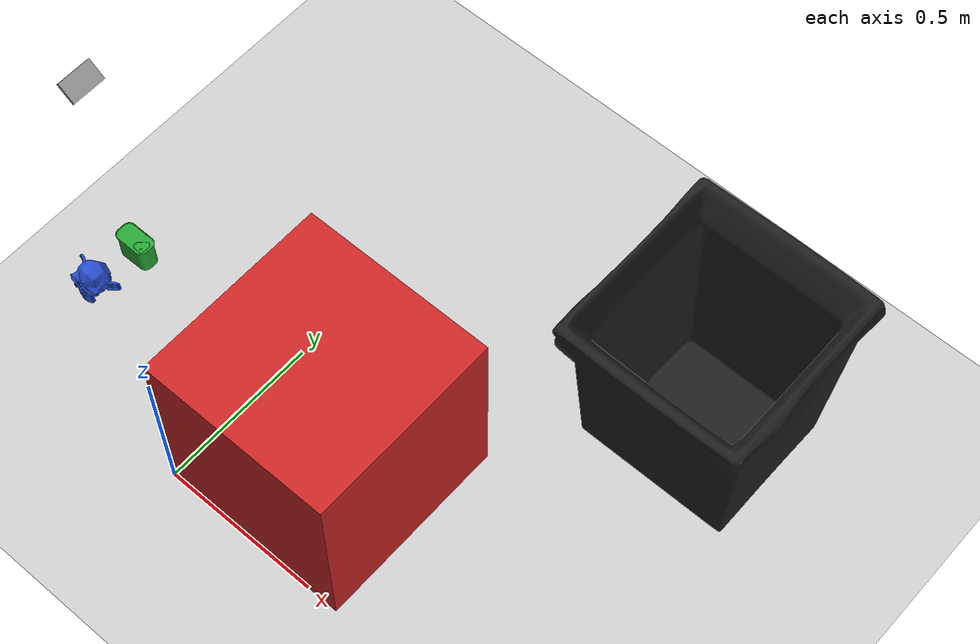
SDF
<?xml version="1.0" ?>
<sdf version="1.4">
  <world name="default">
    <include>
      <uri>model://ground_plane</uri>
    </include>

    <include>
      <uri>model://demo_table</uri>
      <name>demo_table1</name>
      <pose>0.3 0.3 0.3 0 0 0</pose>
    </include>

    <include>
      <uri>model://rubbish_bin</uri>
      <name>rubbish_bin1</name>
      <pose>1.0 1.0 0.1 0 0 0</pose>
    </include>

    <include>
      <uri>model://demo_spam</uri>
      <name>demo_spam1</name>
      <pose>-0.2 0.2 0.7 0 0 0</pose>
    </include>

    <include>
      <uri>model://suzanne</uri>
      <name>suzanne1</name>
      <pose>-0.1 0.0 0.9 0 0 0</pose>
    </include>

    <include>
      <uri>model://sun</uri>
    </include>

    <light name='user_point_light_0' type='point'>
      <pose frame=''>0.573839 -0.613666 1 0 -0 0</pose>
      <diffuse>0.5 0.5 0.5 1</diffuse>
      <specular>0.1 0.1 0.1 1</specular>
      <attenuation>
        <range>20</range>
        <constant>0.5</constant>
        <linear>0.01</linear>
        <quadratic>0.001</quadratic>
      </attenuation>
      <cast_shadows>0</cast_shadows>
      <direction>0 0 -1</direction>
    </light>

    <light name='user_point_light_1' type='point'>
      <pose frame=''>0.573839 -0.613666 1 0 -0 0</pose>
      <diffuse>0.5 0.5 0.5 1</diffuse>
      <specular>0.1 0.1 0.1 1</specular>
      <attenuation>
        <range>20</range>
        <constant>0.5</constant>
        <linear>0.01</linear>
        <quadratic>0.001</quadratic>
      </attenuation>
      <cast_shadows>0</cast_shadows>
      <direction>0 0 -1</direction>
    </light>

    <light name='user_spot_light_0' type='spot'>
      <pose frame=''>-1.7095 -0.748352 1 0 -0 0</pose>
      <diffuse>0.5 0.5 0.5 1</diffuse>
      <specular>0.1 0.1 0.1 1</specular>
      <direction>0 0 -1</direction>
      <attenuation>
        <range>20</range>
        <constant>0.5</constant>
        <linear>0.01</linear>
        <quadratic>0.001</quadratic>
      </attenuation>
      <cast_shadows>0</cast_shadows>
      <spot>
        <inner_angle>0.6</inner_angle>
        <outer_angle>1</outer_angle>
        <falloff>1</falloff>
      </spot>
    </light>

    <model name='rgb_cam'>
      <static>1</static>
      <pose frame=''>-0.415121 0.3 1.092078 0 0.6991 0</pose>
      <link name='rgb_camera'>
        <inertial>
          <mass>0.1</mass>
          <inertia>
            <ixx>8.41666666667e-05</ixx>
            <ixy>0</ixy>
            <ixz>0</ixz>
            <iyy>3.08333333333e-05</iyy>
            <iyz>0</iyz>
            <izz>0.000113333333333</izz>
          </inertia>
        </inertial>
        <collision name='collision'>
          <geometry>
            <box>
              <size>0.060 0.1 0.010</size>
            </box>
          </geometry>
          <max_contacts>10</max_contacts>
          <surface>
            <contact>
              <ode/>
            </contact>
            <bounce/>
            <friction>
              <torsional>
                <ode/>
              </torsional>
              <ode/>
            </friction>
          </surface>
        </collision>
        <visual name='visual'>
          <geometry>
            <box>
              <size>0.060 0.1 0.010</size>
            </box>
          </geometry>
        </visual>
        <sensor name="camera" type="camera">
          <camera>
            <horizontal_fov>1.047</horizontal_fov>
            <image>
              <width>640</width>
              <height>480</height>
              <format>R8G8B8</format>
            </image>
            <clip>
              <near>0.1</near>
              <far>100</far>
            </clip>
          </camera>
          <always_on>1</always_on>
          <update_rate>30</update_rate>
          <visualize>true</visualize>
          <plugin filename="libgazebo_ros_camera.so" name="camera_in_ros">
            <robotNamespace>dynamic_objects</robotNamespace>
            <cameraName>camera</cameraName>
            <imageTopicName>raw_image</imageTopicName>
            <cameraInfoTopicName>info_image</cameraInfoTopicName>
            <FrameName>cameraImage</FrameName>
            <Cy>0</Cy>
            <Cx>0</Cx>
            <updateRate>10.0</updateRate>
          </plugin>
        </sensor>
        <self_collide>0</self_collide>
        <kinematic>0</kinematic>
      </link>
    </model>

    <joint name = "joint_to_world" type="fixed">
      <parent>world</parent>
      <child>rgb_camera::link</child>
    </joint>

    <atmosphere type='adiabatic'/>
    <scene>
      <sky>
        <clouds>
          <speed>12</speed>
        </clouds>
      </sky>
    </scene>

    <physics name='default_physics' default='0' type='ode'>
      <max_step_size>0.001</max_step_size>
      <real_time_factor>1</real_time_factor>
      <real_time_update_rate>1000</real_time_update_rate>
    </physics>

    <!-- reference to your plugin -->
    <plugin name="dynamic_world_plugin" filename="libdynamic_world_plugin.so">
      <update_frequency>1.0</update_frequency>
      <x_max>0.5</x_max>
      <x_min>0.3</x_min>
      <y_max>0.5</y_max>
      <y_min>0.1</y_min>
      <z_max>0.64</z_max>
      <z_min>0.64</z_min>

      <model_to_track_name>demo_spam1</model_to_track_name>

      <model_to_ignore_randcolours>fetch,rgb_cam</model_to_ignore_randcolours>
      <model_to_ignore_movement>fetch,rgb_cam,demo_table1,ground_plane,rubbish_bin1</model_to_ignore_movement>

      <x_max_distractors>0.5</x_max_distractors>
      <x_min_distractors>0.3</x_min_distractors>
      <y_max_distractors>0.5</y_max_distractors>
      <y_min_distractors>0.1</y_min_distractors>
      <z_max_distractors>0.64</z_max_distractors>
      <z_min_distractors>0.64</z_min_distractors>

      <z_increment_percentage>0.1</z_increment_percentage>

      <roll_max>0.0</roll_max>
      <roll_min>0.0</roll_min>
      <pitch_max>0.0</pitch_max>
      <pitch_min>0.0</pitch_min>
      <yaw_max>0.0</yaw_max>
      <yaw_min>0.0</yaw_min>

      <light_x_max>0.3</light_x_max>
      <light_x_min>0.3</light_x_min>
      <light_y_max>0.3</light_y_max>
      <light_y_min>0.3</light_y_min>
      <light_z_max>2.0</light_z_max>
      <light_z_min>2.0</light_z_min>

      <light_roll_max>0.0</light_roll_max>
      <light_roll_min>0.0</light_roll_min>
      <light_pitch_max>0.0</light_pitch_max>
      <light_pitch_min>0.0</light_pitch_min>
      <light_yaw_max>0.0</light_yaw_max>
      <light_yaw_min>0.0</light_yaw_min>

      <cam_x_max>-0.215121</cam_x_max>
      <cam_x_min>-0.215121</cam_x_min>
      <cam_y_max>0.3</cam_y_max>
      <cam_y_min>0.3</cam_y_min>
      <cam_z_max>1.092078</cam_z_max>
      <cam_z_min>1.092078</cam_z_min>

      <cam_roll_max>0.0</cam_roll_max>
      <cam_roll_min>0.0</cam_roll_min>
      <cam_pitch_max>0.6991</cam_pitch_max>
      <cam_pitch_min>0.6991</cam_pitch_min>
      <cam_yaw_max>0.0</cam_yaw_max>
      <cam_yaw_min>0.0</cam_yaw_min>

      <alpha>0.5</alpha>
      <beta>0.5</beta>
      <random_distribution_type>beta_distribution</random_distribution_type>

      <colour_randomiser_active>no</colour_randomiser_active>

    </plugin>

  </world>
</sdf>

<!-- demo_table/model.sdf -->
<sdf version='1.4'>
  <model name="demo_table">
      <static>1</static>
      <link name='link'>
        <inertial>
          <mass>0.25</mass>
          <inertia>
            <ixx>0.015</ixx>
            <ixy>0.000000</ixy>
            <ixz>0.000000</ixz>
            <iyy>0.015</iyy>
            <iyz>0.000000</iyz>
            <izz>0.015</izz>
          </inertia>
        </inertial>
        <collision name='collision'>
          <geometry>
            <box>
              <size>0.6 0.6 0.6</size>
            </box>
          </geometry>
          <surface>
            <friction>
              <ode>
                <mu>30.0</mu>
                <mu2>30.0</mu2>
              </ode>
            </friction>
            <contact>
              <ode>
                <kp>1000000.0</kp>
                <kd>100.0</kd>
                <max_vel>1.0</max_vel>
                <min_depth>0.002</min_depth>
              </ode>
            </contact>
          </surface>
        </collision>
        <visual name='visual'>
          <geometry>
            <box>
              <size>0.6 0.6 0.6</size>
            </box>
          </geometry>
          <material>
            <script>
              <uri>file://media/materials/scripts/gazebo.material</uri>
              <name>Gazebo/Red</name>
            </script>
          </material>
        </visual>
        <velocity_decay>
          <linear>0.000000</linear>
          <angular>0.000000</angular>
        </velocity_decay>
        <self_collide>0</self_collide>
        <kinematic>0</kinematic>
        <gravity>1</gravity>
      </link>
  </model>
</sdf>

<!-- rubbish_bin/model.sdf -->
<sdf version='1.4'>
  <model name="rubbish_bin">
      <static>0</static>
      <link name='link'>
        <inertial>
          <mass>0.25</mass>
          <inertia>
            <ixx>0.00015</ixx>
            <ixy>0.000000</ixy>
            <ixz>0.000000</ixz>
            <iyy>0.00015</iyy>
            <iyz>0.000000</iyz>
            <izz>0.00015</izz>
          </inertia>
        </inertial>
        <collision name='collision'>
          <geometry>
            <mesh>
              <uri>model://rubbish_bin/meshes/p_bin_rig_clean_scaled_normals_v2.stl</uri>
              <scale>1 1 1</scale>
            </mesh>
          </geometry>
          <surface>
            <friction>
              <ode>
                <mu>30.0</mu>
                <mu2>30.0</mu2>
              </ode>
            </friction>
            <contact>
              <ode>
                <kp>1000000.0</kp>
                <kd>100.0</kd>
                <max_vel>1.0</max_vel>
                <min_depth>0.002</min_depth>
              </ode>
            </contact>
          </surface>
        </collision>
        <visual name='visual'>
          <geometry>
            <mesh>
              <uri>model://rubbish_bin/meshes/p_bin_rig_clean_scaled_normals_v2.stl</uri>
              <scale>1 1 1</scale>
            </mesh>
          </geometry>
          <material>
            <script>
              <uri>file://media/materials/scripts/gazebo.material</uri>
              <name>Gazebo/Black</name>
            </script>
          </material>
        </visual>
        <velocity_decay>
          <linear>0.000000</linear>
          <angular>0.000000</angular>
        </velocity_decay>
        <self_collide>0</self_collide>
        <kinematic>0</kinematic>
        <gravity>1</gravity>
      </link>
  </model>
</sdf>

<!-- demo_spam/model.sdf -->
<sdf version='1.4'>
  <model name="demo_spam">
      <static>0</static>
      <link name='link'>
        <inertial>
          <mass>0.25</mass>
          <inertia>
            <ixx>0.00015</ixx>
            <ixy>0.000000</ixy>
            <ixz>0.000000</ixz>
            <iyy>0.00015</iyy>
            <iyz>0.000000</iyz>
            <izz>0.00015</izz>
          </inertia>
        </inertial>
        <collision name='collision'>
          <geometry>
            <box>
              <size>0.102 0.0601 0.0835</size>
            </box>
          </geometry>
          <surface>
            <friction>
              <ode>
                <mu>30.0</mu>
                <mu2>30.0</mu2>
              </ode>
            </friction>
            <contact>
              <ode>
                <kp>1000000.0</kp>
                <kd>100.0</kd>
                <max_vel>1.0</max_vel>
                <min_depth>0.002</min_depth>
              </ode>
            </contact>
          </surface>
        </collision>
        <visual name='visual'>
          <geometry>
            <mesh>
              <uri>model://demo_spam/meshes/nontextured_fixed.stl</uri>
              <scale>1 1 1</scale>
            </mesh>
          </geometry>
          <material>
            <script>
              <uri>file://media/materials/scripts/gazebo.material</uri>
              <name>Gazebo/Green</name>
            </script>
          </material>
        </visual>
        <velocity_decay>
          <linear>0.000000</linear>
          <angular>0.000000</angular>
        </velocity_decay>
        <self_collide>0</self_collide>
        <kinematic>0</kinematic>
        <gravity>1</gravity>
      </link>
  </model>
</sdf>

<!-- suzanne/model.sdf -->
<sdf version='1.4'>
  <model name="suzanne">
      <static>0</static>
      <link name='link'>
        <inertial>
          <mass>0.25</mass>
          <inertia>
            <ixx>0.00015</ixx>
            <ixy>0.000000</ixy>
            <ixz>0.000000</ixz>
            <iyy>0.00015</iyy>
            <iyz>0.000000</iyz>
            <izz>0.00015</izz>
          </inertia>
        </inertial>
        <collision name='collision'>
          <geometry>
            <mesh>
              <uri>model://suzanne/meshes/suzanne.stl</uri>
              <scale>1 1 1</scale>
            </mesh>
          </geometry>
          <surface>
            <friction>
              <ode>
                <mu>30.0</mu>
                <mu2>30.0</mu2>
              </ode>
            </friction>
            <contact>
              <ode>
                <kp>1000000.0</kp>
                <kd>100.0</kd>
                <max_vel>1.0</max_vel>
                <min_depth>0.002</min_depth>
              </ode>
            </contact>
          </surface>
        </collision>
        <visual name='visual'>
          <geometry>
            <mesh>
              <uri>model://suzanne/meshes/suzanne.stl</uri>
              <scale>1 1 1</scale>
            </mesh>
          </geometry>
          <material>
            <script>
              <uri>file://media/materials/scripts/gazebo.material</uri>
              <name>Gazebo/Blue</name>
            </script>
          </material>
        </visual>
        <velocity_decay>
          <linear>0.000000</linear>
          <angular>0.000000</angular>
        </velocity_decay>
        <self_collide>0</self_collide>
        <kinematic>0</kinematic>
        <gravity>1</gravity>
      </link>
  </model>
</sdf>
